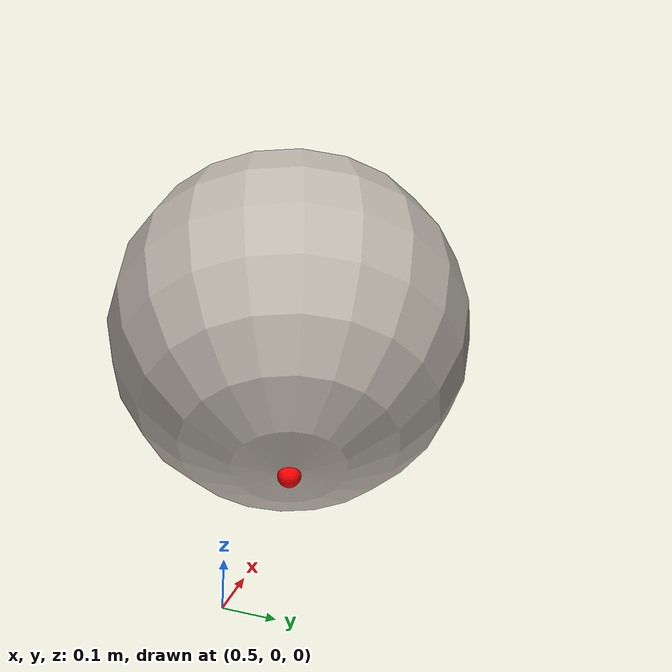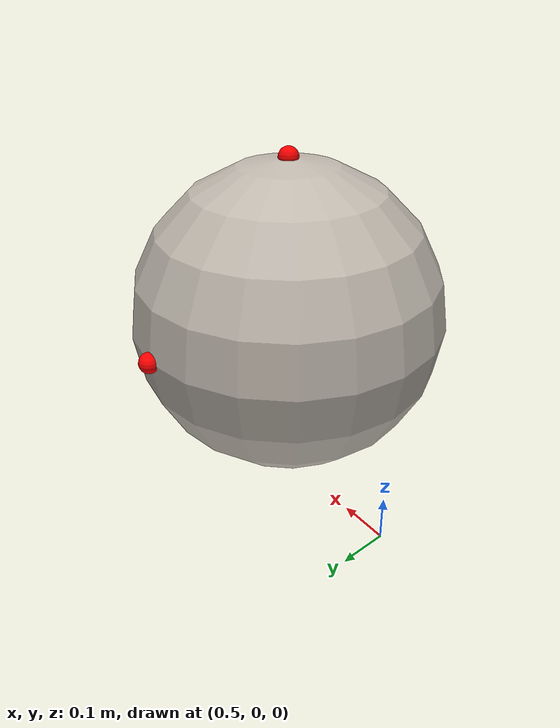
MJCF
<mujoco model="ball">
    <compiler angle="radian"/>

    <default>
        <geom contype="1" conaffinity="1" friction="0.8 0.8 0.8" />
    </default>

    <asset>
        <texture name="ball_texture" type="2d" file="/home/breeze/Desktop/workplace/Humanoid/humanoid-rl/sim2real/data/objects/ball/texture.png" />
        <material name="ball_mat" texture="ball_texture" />
        <material name="red_mat" rgba="1 0 0 1"/>
    </asset>

    <worldbody>
        <body name="ball" pos="0.8 0 0.4" quat="1 0 0 0">
            <freejoint name="ball_root"/>

            <geom type="sphere" size="0.32" pos="0 0 0" material="ball_mat" mass="8" friction="1.0"/>

            <geom type="sphere" size="0.02" pos="0 0 0.32" material="red_mat" contype="0" conaffinity="0" />
            <geom type="sphere" size="0.02" pos="0 0 -0.32" material="red_mat" contype="0" conaffinity="0" />
            <geom type="sphere" size="0.02" pos="0 0.32 0" material="red_mat" contype="0" conaffinity="0" />
        </body>
    </worldbody>

    <sensor>
        <framepos name="ball_pos" objtype="xbody" objname="ball" />
        <framequat name="ball_quat" objtype="xbody" objname="ball" />
    </sensor>

</mujoco>
